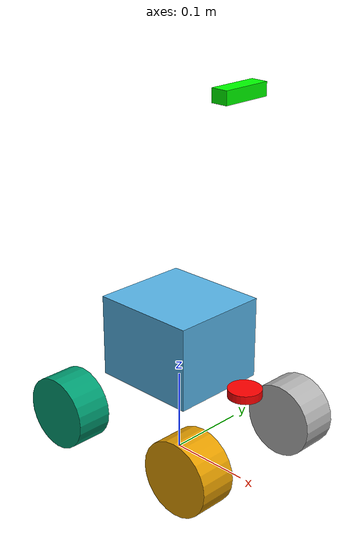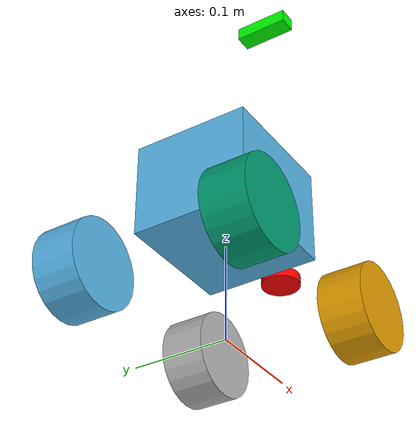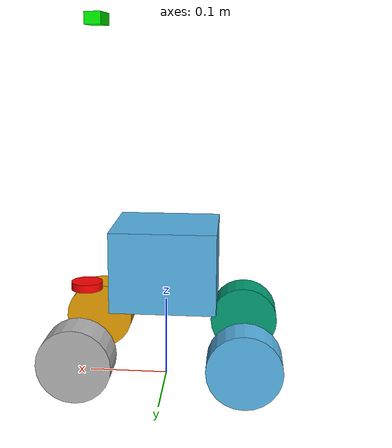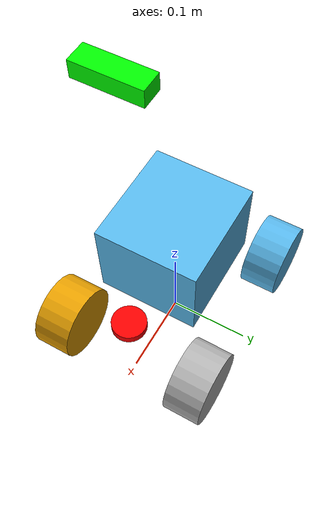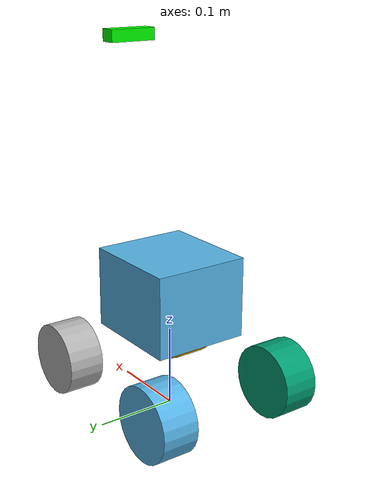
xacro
<?xml version="1.0"?>

<robot name="limo_four_diff" xmlns:xacro="http://ros.org/wiki/xacro">

    <xacro:include filename="$(find limo_simulation)/urdf/limo_xacro.xacro" />

    <!-- Variables -->
    <xacro:arg name="robot_namespace" default="" />

    <xacro:property name="M_PI" value="3.14159"/>

    <!-- Vehicle Geometries -->
    <xacro:property name="base_x_size" value="0.13" />
    <xacro:property name="base_y_size" value="0.12" />
    <xacro:property name="base_z_size" value="0.1" />

    <xacro:property name="wheelbase" value="0.2"/>
    <xacro:property name="track" value="0.13"/>
    <xacro:property name="wheel_vertical_offset" value="-0.10" />
    <xacro:property name="base_mass" value="4.8"/>

    <xacro:property name="wheel_length" value="0.045" />
    <xacro:property name="wheel_radius" value="0.045" />
  <link name="base_footprint"/>

  <joint name="base_joint" type="fixed">
    <parent link="base_footprint"/>
    <child link="base_link"/>
    <origin xyz="0.0 0.0 0.15" rpy="0 0 0"/>
  </joint>
    <!-- Base link -->
    <link name="base_link">
        <visual>
            <origin xyz="0 0 0" rpy="0 0 0" />
          <geometry>
              <box size="${base_x_size} ${base_y_size} ${base_z_size}"/>
          </geometry>
        </visual>
        <collision>
            <!--origin xyz="0 0 -0.15" rpy="0 0 1.57" /-->
            <origin xyz="0 0 0" rpy="0 0 0" />
          <geometry>
            <box size="0.322 0.22 0.251"/>
          </geometry>
        </collision>
    </link>

    <link name="inertial_link">
        <inertial>
            <origin xyz="0.0 0.0 0.0" />
            <mass value="${base_mass}" />
            <inertia ixx="0.44" ixy="0" ixz="0"
                     iyy="0.66" iyz="0"
                     izz="0.6" />
        </inertial>
    </link>

    <joint name="inertial_joint" type="fixed">
        <origin xyz="0 0 0" rpy="0 0 0" />
        <parent link="base_link" />
        <child link="inertial_link" />
    </joint>

    <xacro:limo_laser parent_prefix="base_link" frame_prefix="laser">
        <origin xyz="0.103 0 -0.034" rpy="0 0 0"/>
    </xacro:limo_laser>

    <xacro:limo_depth_camera parent_prefix="base_link" frame_prefix="depth_camera">
        <origin xyz="0.084 0 0.3" rpy="0 0 0"/>
    </xacro:limo_depth_camera>

    <xacro:limo_imu parent_prefix="base_link" frame_prefix="imu">
        <origin xyz="0.0 0 -0.1" rpy="0 0 0"/>
    </xacro:limo_imu>

    <xacro:limo_wheel parent_prefix="base_link" wheel_prefix="front_left" reflect="1">
        <origin xyz="${wheelbase/2} ${track/2} ${wheel_vertical_offset}" rpy="0 0  0" />
    </xacro:limo_wheel>

    <xacro:limo_wheel parent_prefix="base_link" wheel_prefix="front_right" reflect="-1">
        <origin xyz="${wheelbase/2} ${-track/2} ${wheel_vertical_offset}" rpy="${M_PI} 0 0" />
    </xacro:limo_wheel>

    <xacro:limo_wheel parent_prefix="base_link" wheel_prefix="rear_left" reflect="1">
        <origin xyz="${-wheelbase/2} ${track/2} ${wheel_vertical_offset}" rpy="0 0 0" />
    </xacro:limo_wheel>

    <xacro:limo_wheel parent_prefix="base_link" wheel_prefix="rear_right" reflect="-1">
        <origin xyz="${-wheelbase/2} ${-track/2} ${wheel_vertical_offset}" rpy="${M_PI} 0 0" />
    </xacro:limo_wheel>

    <gazebo reference="imu_link">
    <gravity>true</gravity>
    <sensor name="twr_imu" type="imu">
      <always_on>true</always_on>
      <update_rate>100</update_rate>
      <visualize>true</visualize>
      <imu>
        <orientation>
          <x>
            <noise type="gaussian">
              <mean>0.0</mean>
              <stddev>2e-3</stddev>
            </noise>
          </x>
          <y>
            <noise type="gaussian">
              <mean>0.0</mean>
              <stddev>2e-3</stddev>
            </noise>
          </y>
          <z>
            <noise type="gaussian">
              <mean>0.0</mean>
              <stddev>2e-3</stddev>
            </noise>
          </z>
        </orientation>
        <angular_velocity>
          <x>
            <noise type="gaussian">
              <mean>0.0</mean>
              <stddev>2e-4</stddev>
            </noise>
          </x>
          <y>
            <noise type="gaussian">
              <mean>0.0</mean>
              <stddev>2e-4</stddev>
            </noise>
          </y>
          <z>
            <noise type="gaussian">
              <mean>0.0</mean>
              <stddev>2e-4</stddev>
            </noise>
          </z>
        </angular_velocity>
        <linear_acceleration>
          <x>
            <noise type="gaussian">
              <mean>0.0</mean>
              <stddev>1.7e-2</stddev>
            </noise>
          </x>
          <y>
            <noise type="gaussian">
              <mean>0.0</mean>
              <stddev>1.7e-2</stddev>
            </noise>
          </y>
          <z>
            <noise type="gaussian">
              <mean>0.0</mean>
              <stddev>1.7e-2</stddev>
            </noise>
          </z>
        </linear_acceleration>
      </imu>
      <plugin name="$(arg robot_namespace)_imu" filename="libgazebo_ros_imu_sensor.so">
        <initial_orientation_as_reference>false</initial_orientation_as_reference>
        <frame_name>imu_link</frame_name>
        <ros>
          <robot_namespace>$(arg robot_namespace)/imu</robot_namespace>
          <remapping>~/out:=data</remapping>
        </ros>
      </plugin>
    </sensor>
</gazebo>
<gazebo reference="laser_link">
    <sensor name="laser" type="ray">
      <always_on>true</always_on>
      <visualize>true</visualize>
      <update_rate>10</update_rate>
      <ray>
        <scan>
          <horizontal>
            <samples>120</samples>
            <resolution>1.000000</resolution>
            <min_angle>-1.57</min_angle>
            <max_angle>1.57</max_angle>
          </horizontal>
        </scan>
        <range>
          <min>0.3</min>
          <max>15.0</max>
          <resolution>0.015</resolution>
        </range>
        <noise>
          <type>gaussian</type>
          <mean>0.0</mean>
          <stddev>0.01</stddev>
        </noise>
      </ray>
    <plugin name="$(arg robot_namespace)_scan" filename="libgazebo_ros_ray_sensor.so">
      <ros>
        <remapping>~/out:=$(arg robot_namespace)/scan</remapping>
      </ros>
      <output_type>sensor_msgs/LaserScan</output_type>
      <frame_name>laser_link</frame_name>
    </plugin>
    </sensor>
  </gazebo>

    <gazebo reference="front_left_wheel">
        <mu1>100</mu1>
        <mu2>100</mu2>
        <kp>10000000.0</kp>
        <kd>1.0</kd>
        <minDepth>0.01</minDepth>
        <fdir1>1 0 0</fdir1>
        <maxContacts value="64"/>
    </gazebo>
    <gazebo reference="front_right_wheel">
        <mu1>100</mu1>
        <mu2>100</mu2>
        <kp>10000000.0</kp>
        <kd>1.0</kd>
        <minDepth>0.01</minDepth>
        <fdir1>1 0 0</fdir1>
        <maxContacts value="64"/>
    </gazebo>
    <gazebo reference="rear_left_wheel">
        <mu1>100</mu1>
        <mu2>100</mu2>
        <kp>10000000.0</kp>
        <kd>1.0</kd>
        <minDepth>0.01</minDepth>
        <fdir1>1 0 0</fdir1>
        <maxContacts value="64"/>
    </gazebo>
    <gazebo reference="rear_right_wheel">
        <mu1>100</mu1>
        <mu2>100</mu2>
        <kp>10000000.0</kp>
        <kd>1.0</kd>
        <minDepth>0.01</minDepth>
        <fdir1>1 0 0</fdir1>
        <maxContacts value="64"/>
    </gazebo>
    <gazebo>
        <plugin name="$(arg robot_namespace)_diff_drive" filename="libgazebo_ros_diff_drive.so">
        <update_rate>50</update_rate>
        <num_wheel_pairs>2</num_wheel_pairs>
        <left_joint>front_left_wheel</left_joint>
        <left_joint>rear_left_wheel</left_joint>
        <right_joint>front_right_wheel</right_joint>
        <right_joint>rear_right_wheel</right_joint>
        <wheel_separation>0.172</wheel_separation>
        <wheel_diameter>0.09</wheel_diameter>
        <max_wheel_torque>10</max_wheel_torque>
        <max_wheel_acceleration>1.0</max_wheel_acceleration>
        <command_topic>cmd_vel</command_topic>
        <publish_odom>true</publish_odom>
        <publish_odom_tf>true</publish_odom_tf>
        <publish_wheel_tf>true</publish_wheel_tf>
        <odometry_topic>/odom</odometry_topic>
        <odometry_frame>/odom</odometry_frame>
        <robot_base_frame>base_footprint</robot_base_frame>
        <odometry_source>1</odometry_source>
        <ros>
            <remapping>odom:=$(arg robot_namespace)/odometry</remapping>
            <remapping>cmd_vel:=$(arg robot_namespace)/cmd_vel</remapping>
        </ros>
        </plugin>
    </gazebo>
</robot>

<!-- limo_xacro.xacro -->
<robot name="limo_xacro" xmlns:xacro="http://ros.org/wiki/xacro">

    <xacro:macro name="limo_wheel" params="parent_prefix wheel_prefix reflect *joint_pose">
        <link name="${wheel_prefix}_wheel_link">
            <inertial>
                <origin xyz="0 0 0" />
                <mass value="0.5" />
                <inertia ixx="0.01055" ixy="0" ixz="0" iyy="0.00075" iyz="0" izz="0.01055" />
            </inertial>
            <visual>
              <origin xyz="0 ${wheel_length/2} 0" rpy="1.57 0 0" />
              <geometry>
                  <cylinder length="${wheel_length}" radius="${wheel_radius}" />
              </geometry>

            </visual>
            <collision>
              <origin xyz="0 ${wheel_length/2} 0" rpy="1.57 0 0" />
              <geometry>
                  <cylinder length="${wheel_length}" radius="${wheel_radius}" />
              </geometry>
            <surface>
            <friction>
                <ode>
                <mu>1.0</mu>
                <mu2>1.0</mu2>
                </ode>
            </friction>
            <contact>
                <ode>
                <max_vel>0.1</max_vel>
                <min_depth>0.001</min_depth>
                </ode>
            </contact>
            </surface>
            </collision>
        </link>

        <joint name="${wheel_prefix}_wheel" type="continuous">
            <parent link="${parent_prefix}"/>
            <child link="${wheel_prefix}_wheel_link"/>
            <xacro:insert_block name="joint_pose"/>
            <axis xyz="0 ${reflect*1} 0"/>
        </joint>
    </xacro:macro>

    <xacro:macro name="limo_laser" params="parent_prefix frame_prefix *joint_pose">
        <link name='${frame_prefix}_link'>
            <pose>0 0 0 0 0 0</pose>
            <inertial>
                <mass value="0.1"/>
                <origin xyz="0.0 0 0" rpy="0 0 0"/>
                <inertia
                    ixx="1e-6" ixy="0" ixz="0"
                    iyy="1e-6" iyz="0"
                    izz="1e-6"
                />
            </inertial>
            <visual name='laser_visual'>
                <origin xyz="0 0 0" rpy="0 0 0"/>
                <geometry>
                    <cylinder radius="0.02" length="0.01"/>
                </geometry>
                <material name='laser_material'>
                    <color rgba="1 0 0 1"/>
                    <ambient>0.1 0.1 0.1 1</ambient>
                    <diffuse>0.1 0.1 0.2 1</diffuse>
                    <specular>0 0 0 0</specular>
                    <emissive>0 0 0 1</emissive>
                </material>
            </visual>
            <collision name='laser_collision'>
                <origin xyz="0 0 0" rpy="0 0 0"/>
                <geometry>
                    <cylinder radius="0.032" length="0.016"/>
                </geometry>
            </collision>
        </link>
        <joint type="fixed" name="laser_joint">
            <xacro:insert_block name="joint_pose"/>
            <child link="${frame_prefix}_link"/>
            <parent link="${parent_prefix}"/>
        </joint>
        <gazebo reference="${frame_prefix}_link">
            <material>Gazebo/Yellow</material>
        </gazebo>
    </xacro:macro>

    <xacro:macro name="limo_depth_camera" params="parent_prefix frame_prefix *joint_pose">
        <link name='${frame_prefix}_link'>
            <pose>0 0 0 0 0 0</pose>
            <inertial>
                <mass value="0.1"/>
                <origin xyz="0.0 0 0" rpy="0 0 0"/>
                <inertia
                    ixx="1e-6" ixy="0" ixz="0"
                    iyy="1e-6" iyz="0"
                    izz="1e-6"
                />
            </inertial>
            <visual name='depth_camera_visual'>
                <origin xyz="0 0 0" rpy="0 0 0"/>
                <geometry>
                    <box size="0.02 0.06 0.015"/>
                </geometry>
                <material name='depth_camera_material'>
                    <color rgba="0 1 0 1"/>
                    <ambient>0.1 0.1 0.1 1</ambient>
                    <diffuse>0.1 0.1 0.2 1</diffuse>
                    <specular>0 0 0 0</specular>
                    <emissive>0 0 0 1</emissive>
                </material>
            </visual>
            <collision name='depth_camera_collision'>
                <origin xyz="0 0 0" rpy="0 0 0"/>
                <geometry>
                    <box size="0.02 0.06 0.015"/>
                </geometry>
            </collision>

        </link>

        <joint type="fixed" name="depth_camera_joint">
            <xacro:insert_block name="joint_pose"/>
            <child link="${frame_prefix}_link"/>
            <parent link="${parent_prefix}"/>
        </joint>
        <link name="depth_link"></link>

        <joint name="${frame_prefix}_to_camera_joint" type="fixed">
            <origin xyz="0 0 0" rpy="${-M_PI/2} 0 ${-M_PI/2} "/>
            <parent link="${frame_prefix}_link"/>
            <child link="depth_link"/>
          </joint>

        <gazebo reference="${frame_prefix}_link">
            <material>Gazebo/Yellow</material>
        </gazebo>
    </xacro:macro>

    <xacro:macro name="limo_imu" params="parent_prefix frame_prefix  *joint_pose">
        <link name='${frame_prefix}_link'>
            <pose>0 0 0 0 0 0</pose>
            <inertial>
                <mass value="0.01"/>
                <origin xyz="0.0 0 0" rpy="0 0 0"/>
                <inertia
                    ixx="1e-7" ixy="0" ixz="0"
                    iyy="1e-7" iyz="0"
                    izz="1e-7"
                />
            </inertial>
            <visual name='imu_visual'>
                <origin xyz="0 0 0" rpy="0 0 0"/>
                <geometry>
                    <box size="0.001 0.001 0.001"/>
                </geometry>
                <material name='imu_material'>
                    <color rgba="0 0 1 1"/>
                    <ambient>0.1 0.1 0.1 1</ambient>
                    <diffuse>0.1 0.1 0.2 1</diffuse>
                    <specular>0 0 0 0</specular>
                    <emissive>0 0 0 1</emissive>
                </material>
            </visual>
            <collision name='imu_collision'>
                <origin xyz="0 0 0" rpy="0 0 0"/>
                <geometry>
                    <box size="0.001 0.001 0.001"/>
                </geometry>
            </collision>
        </link>
        <joint type="fixed" name="imu_joint">
            <xacro:insert_block name="joint_pose"/>
            <child link="${frame_prefix}_link"/>
            <parent link="${parent_prefix}"/>
        </joint>
        <gazebo reference="${frame_prefix}_link">
            <material>Gazebo/Yellow</material>
        </gazebo>
    </xacro:macro>
</robot>
